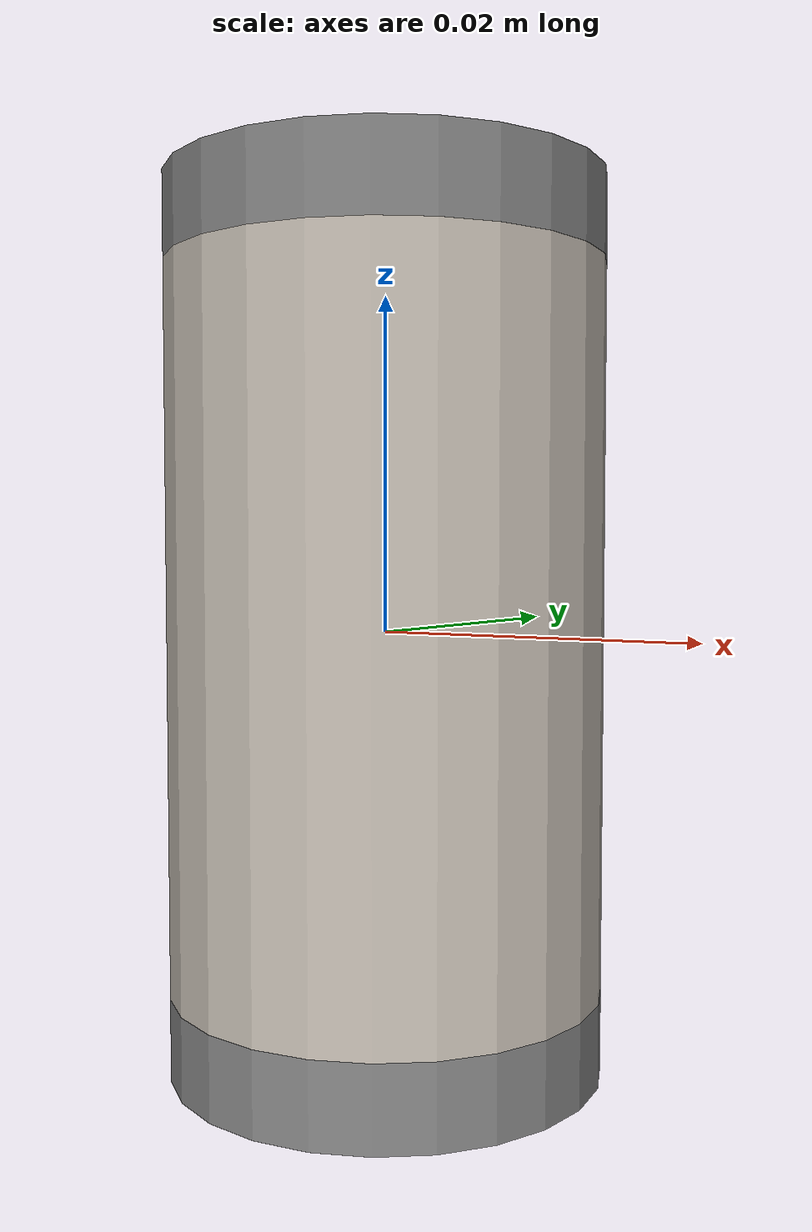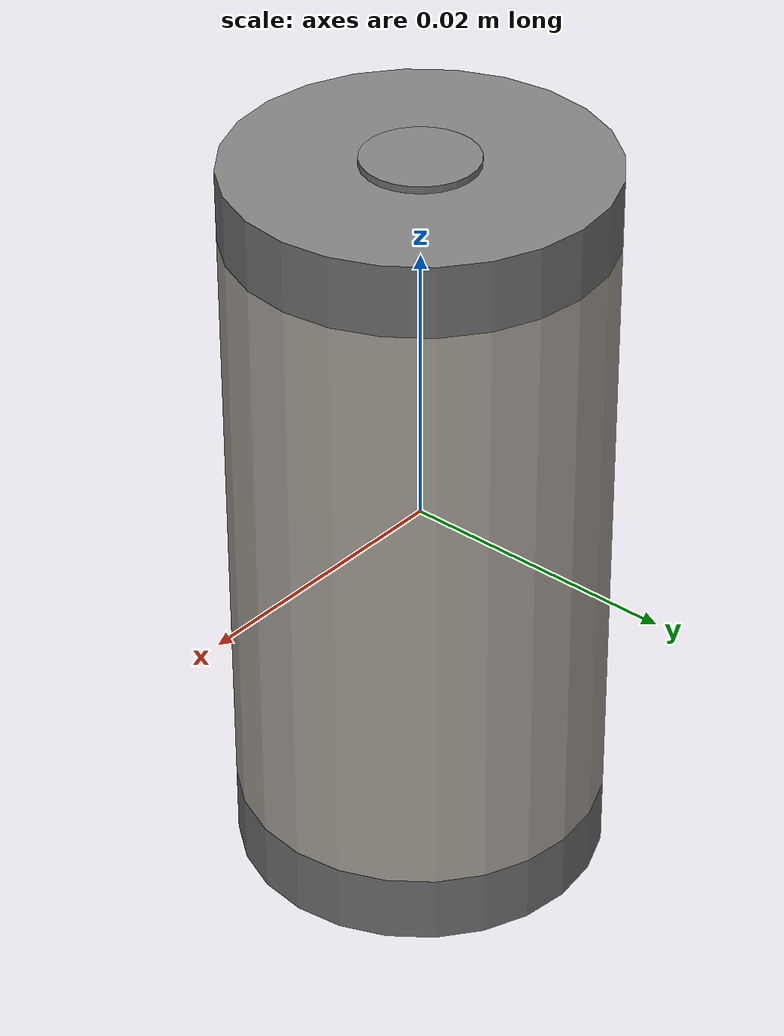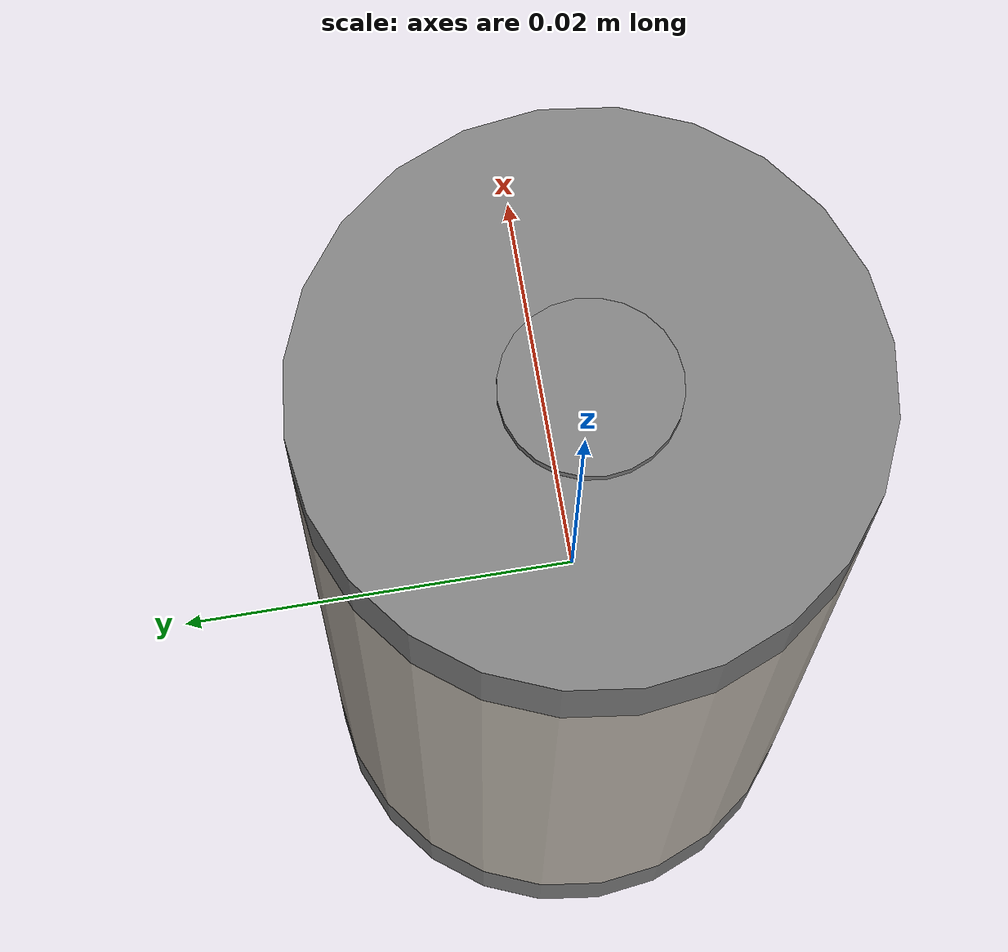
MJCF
<mujoco model="battery_C">
    <asset>
        <!-- Add the date texture -->
        <texture name="battery_texture" type="2d" file="dated_image.png" />
        <material name="battery_material" texture="battery_texture" texrepeat="5 5" texuniform="true" />
    </asset>

    <worldbody>
        <body name="battery_C" pos="0 0 0">
            <!-- Main green body with texture -->
            <geom name="battery_body" type="cylinder" pos="0 0 0" size="0.0131 0.02175"
                  material="battery_material"
                  mass="0.07" friction="1 0.005 0.0001" condim="4"/>

            <!-- Bottom grey cap -->
            <geom name="battery_bottom_cap" type="cylinder" pos="0 0 -0.02425" size="0.0131 0.0025"
                  rgba="0.5 0.5 0.5 1" mass="0.01" friction="1 0.005 0.0001" condim="4"/>

            <!-- Top grey cap -->
            <geom name="battery_top_cap" type="cylinder" pos="0 0 0.02425" size="0.0131 0.0025"
                  rgba="0.5 0.5 0.5 1" mass="0.01" friction="1 0.005 0.0001" condim="4"/>

            <!-- Positive bump on top -->
            <geom name="battery_positive_bump" type="cylinder" pos="0 0 0.02575" size="0.004 0.0015"
                  rgba="0.5 0.5 0.5 1" mass="0.001" friction="1 0.005 0.0001" condim="4"/>

        </body>
    </worldbody>
</mujoco>
